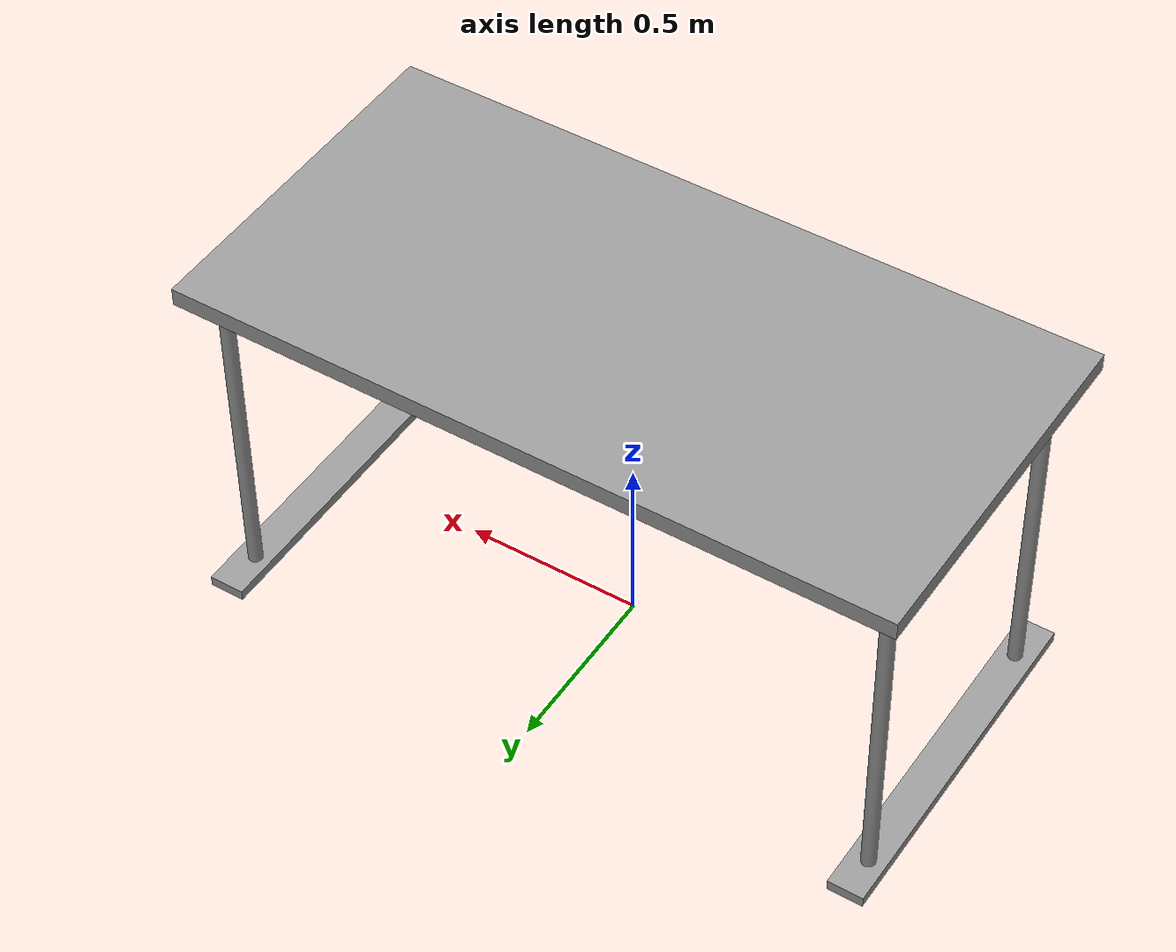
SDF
<?xml version='1.0'?>
<sdf version='1.7'>
  <model name='my_table'>
    <link name='link'>
      <inertial>
        <mass>1</mass>
        <inertia>
          <ixx>0.166667</ixx>
          <ixy>0</ixy>
          <ixz>0</ixz>
          <iyy>0.166667</iyy>
          <iyz>0</iyz>
          <izz>0.166667</izz>
        </inertia>
        <pose>0 0 0 0 -0 0</pose>
      </inertial>
      <self_collide>0</self_collide>
      <enable_wind>0</enable_wind>
      <kinematic>0</kinematic>
      <pose>0 0 0 0 -0 0</pose>
      <gravity>1</gravity>
      <visual name='visual'>
        <geometry>
          <box>
            <size>2 1 0.05</size>
          </box>
        </geometry>
        <material>
          <script>
            <name>Gazebo/Grey</name>
            <uri>file://media/materials/scripts/gazebo.material</uri>
          </script>
          <shader type='pixel'>
            <normal_map>__default__</normal_map>
          </shader>
          <ambient>0.8 0.8 0.8 1</ambient>
          <diffuse>0.65 0.65 0.65 1</diffuse>
          <specular>0.01 0.01 0.01 1</specular>
          <emissive>0.1 0.1 0.1 1</emissive>
        </material>
        <pose>0 0 1 0 -0 0</pose>
        <transparency>0</transparency>
        <cast_shadows>1</cast_shadows>
      </visual>
      <collision name='collision'>
        <laser_retro>0</laser_retro>
        <max_contacts>10</max_contacts>
        <pose>0 0 1 0 -0 0</pose>
        <geometry>
          <box>
            <size>2 1 0.05</size>
          </box>
        </geometry>
        <surface>
          <friction>
            <ode>
              <mu>1</mu>
              <mu2>1</mu2>
              <fdir1>0 0 0</fdir1>
              <slip1>0</slip1>
              <slip2>0</slip2>
            </ode>
            <torsional>
              <coefficient>1</coefficient>
              <patch_radius>0</patch_radius>
              <surface_radius>0</surface_radius>
              <use_patch_radius>1</use_patch_radius>
              <ode>
                <slip>0</slip>
              </ode>
            </torsional>
          </friction>
          <bounce>
            <restitution_coefficient>0</restitution_coefficient>
            <threshold>1e+06</threshold>
          </bounce>
          <contact>
            <collide_without_contact>0</collide_without_contact>
            <collide_without_contact_bitmask>1</collide_without_contact_bitmask>
            <collide_bitmask>1</collide_bitmask>
            <ode>
              <soft_cfm>0</soft_cfm>
              <soft_erp>0.2</soft_erp>
              <kp>1e+13</kp>
              <kd>1</kd>
              <max_vel>0.01</max_vel>
              <min_depth>0</min_depth>
            </ode>
            <bullet>
              <split_impulse>1</split_impulse>
              <split_impulse_penetration_threshold>-0.01</split_impulse_penetration_threshold>
              <soft_cfm>0</soft_cfm>
              <soft_erp>0.2</soft_erp>
              <kp>1e+13</kp>
              <kd>1</kd>
            </bullet>
          </contact>
        </surface>
      </collision>
    </link>
    <link name='link_1'>
      <inertial>
        <mass>1</mass>
        <inertia>
          <ixx>0.145833</ixx>
          <ixy>0</ixy>
          <ixz>0</ixz>
          <iyy>0.145833</iyy>
          <iyz>0</iyz>
          <izz>0.125</izz>
        </inertia>
        <pose>0 0 0 0 -0 0</pose>
      </inertial>
      <pose>0.928374 -0.393621 0.5 0 -0 0</pose>
      <gravity>1</gravity>
      <self_collide>0</self_collide>
      <kinematic>0</kinematic>
      <enable_wind>0</enable_wind>
      <visual name='visual'>
        <pose>0 0 0 0 -0 0</pose>
        <geometry>
          <cylinder>
            <radius>0.02</radius>
            <length>1</length>
          </cylinder>
        </geometry>
        <material>
          <lighting>1</lighting>
          <script>
            <uri>file://media/materials/scripts/gazebo.material</uri>
            <name>Gazebo/Grey</name>
          </script>
          <shader type='pixel'>
            <normal_map>__default__</normal_map>
          </shader>
          <ambient>0.5 0.5 0.5 1</ambient>
          <diffuse>0.8 0.8 0.8 1</diffuse>
          <specular>0.01 0.01 0.01 1</specular>
          <emissive>0 0 0 1</emissive>
        </material>
        <transparency>0</transparency>
        <cast_shadows>1</cast_shadows>
      </visual>
      <collision name='collision'>
        <laser_retro>0</laser_retro>
        <max_contacts>10</max_contacts>
        <pose>0 0 0 0 -0 0</pose>
        <geometry>
          <cylinder>
            <radius>0.02</radius>
            <length>0.75</length>
          </cylinder>
        </geometry>
        <surface>
          <friction>
            <ode>
              <mu>1</mu>
              <mu2>1</mu2>
              <fdir1>0 0 0</fdir1>
              <slip1>0</slip1>
              <slip2>0</slip2>
            </ode>
            <torsional>
              <coefficient>1</coefficient>
              <patch_radius>0</patch_radius>
              <surface_radius>0</surface_radius>
              <use_patch_radius>1</use_patch_radius>
              <ode>
                <slip>0</slip>
              </ode>
            </torsional>
          </friction>
          <bounce>
            <restitution_coefficient>0</restitution_coefficient>
            <threshold>1e+06</threshold>
          </bounce>
          <contact>
            <collide_without_contact>0</collide_without_contact>
            <collide_without_contact_bitmask>1</collide_without_contact_bitmask>
            <collide_bitmask>1</collide_bitmask>
            <ode>
              <soft_cfm>0</soft_cfm>
              <soft_erp>0.2</soft_erp>
              <kp>1e+13</kp>
              <kd>1</kd>
              <max_vel>0.01</max_vel>
              <min_depth>0</min_depth>
            </ode>
            <bullet>
              <split_impulse>1</split_impulse>
              <split_impulse_penetration_threshold>-0.01</split_impulse_penetration_threshold>
              <soft_cfm>0</soft_cfm>
              <soft_erp>0.2</soft_erp>
              <kp>1e+13</kp>
              <kd>1</kd>
            </bullet>
          </contact>
        </surface>
      </collision>
    </link>
    <link name='link_1_clone_1'>
      <inertial>
        <mass>1</mass>
        <inertia>
          <ixx>0.145833</ixx>
          <ixy>0</ixy>
          <ixz>0</ixz>
          <iyy>0.145833</iyy>
          <iyz>0</iyz>
          <izz>0.125</izz>
        </inertia>
        <pose>0 0 0 0 -0 0</pose>
      </inertial>
      <pose>-0.927679 -0.365385 0.5 0 -0 0</pose>
      <gravity>1</gravity>
      <self_collide>0</self_collide>
      <kinematic>0</kinematic>
      <enable_wind>0</enable_wind>
      <visual name='visual'>
        <pose>0 0 0 0 -0 0</pose>
        <geometry>
          <cylinder>
            <radius>0.02</radius>
            <length>1</length>
          </cylinder>
        </geometry>
        <material>
          <lighting>1</lighting>
          <script>
            <uri>file://media/materials/scripts/gazebo.material</uri>
            <name>Gazebo/Grey</name>
          </script>
          <shader type='pixel'>
            <normal_map>__default__</normal_map>
          </shader>
          <ambient>0.5 0.5 0.5 1</ambient>
          <diffuse>0.8 0.8 0.8 1</diffuse>
          <specular>0.01 0.01 0.01 1</specular>
          <emissive>0 0 0 1</emissive>
        </material>
        <transparency>0</transparency>
        <cast_shadows>1</cast_shadows>
      </visual>
      <collision name='collision'>
        <laser_retro>0</laser_retro>
        <max_contacts>10</max_contacts>
        <pose>0 0 0 0 -0 0</pose>
        <geometry>
          <cylinder>
            <radius>0.02</radius>
            <length>0.75</length>
          </cylinder>
        </geometry>
        <surface>
          <friction>
            <ode>
              <mu>1</mu>
              <mu2>1</mu2>
              <fdir1>0 0 0</fdir1>
              <slip1>0</slip1>
              <slip2>0</slip2>
            </ode>
            <torsional>
              <coefficient>1</coefficient>
              <patch_radius>0</patch_radius>
              <surface_radius>0</surface_radius>
              <use_patch_radius>1</use_patch_radius>
              <ode>
                <slip>0</slip>
              </ode>
            </torsional>
          </friction>
          <bounce>
            <restitution_coefficient>0</restitution_coefficient>
            <threshold>1e+06</threshold>
          </bounce>
          <contact>
            <collide_without_contact>0</collide_without_contact>
            <collide_without_contact_bitmask>1</collide_without_contact_bitmask>
            <collide_bitmask>1</collide_bitmask>
            <ode>
              <soft_cfm>0</soft_cfm>
              <soft_erp>0.2</soft_erp>
              <kp>1e+13</kp>
              <kd>1</kd>
              <max_vel>0.01</max_vel>
              <min_depth>0</min_depth>
            </ode>
            <bullet>
              <split_impulse>1</split_impulse>
              <split_impulse_penetration_threshold>-0.01</split_impulse_penetration_threshold>
              <soft_cfm>0</soft_cfm>
              <soft_erp>0.2</soft_erp>
              <kp>1e+13</kp>
              <kd>1</kd>
            </bullet>
          </contact>
        </surface>
      </collision>
    </link>
    <link name='link_1_clone_1_clone'>
      <inertial>
        <mass>1</mass>
        <inertia>
          <ixx>0.145833</ixx>
          <ixy>0</ixy>
          <ixz>0</ixz>
          <iyy>0.145833</iyy>
          <iyz>0</iyz>
          <izz>0.125</izz>
        </inertia>
        <pose>0 0 0 0 -0 0</pose>
      </inertial>
      <pose>-0.933002 0.405987 0.5 0 -0 0</pose>
      <gravity>1</gravity>
      <self_collide>0</self_collide>
      <kinematic>0</kinematic>
      <enable_wind>0</enable_wind>
      <visual name='visual'>
        <pose>0 0 0 0 -0 0</pose>
        <geometry>
          <cylinder>
            <radius>0.02</radius>
            <length>1</length>
          </cylinder>
        </geometry>
        <material>
          <lighting>1</lighting>
          <script>
            <uri>file://media/materials/scripts/gazebo.material</uri>
            <name>Gazebo/Grey</name>
          </script>
          <shader type='pixel'>
            <normal_map>__default__</normal_map>
          </shader>
          <ambient>0.5 0.5 0.5 1</ambient>
          <diffuse>0.8 0.8 0.8 1</diffuse>
          <specular>0.01 0.01 0.01 1</specular>
          <emissive>0 0 0 1</emissive>
        </material>
        <transparency>0</transparency>
        <cast_shadows>1</cast_shadows>
      </visual>
      <collision name='collision'>
        <laser_retro>0</laser_retro>
        <max_contacts>10</max_contacts>
        <pose>0 0 0 0 -0 0</pose>
        <geometry>
          <cylinder>
            <radius>0.02</radius>
            <length>0.75</length>
          </cylinder>
        </geometry>
        <surface>
          <friction>
            <ode>
              <mu>1</mu>
              <mu2>1</mu2>
              <fdir1>0 0 0</fdir1>
              <slip1>0</slip1>
              <slip2>0</slip2>
            </ode>
            <torsional>
              <coefficient>1</coefficient>
              <patch_radius>0</patch_radius>
              <surface_radius>0</surface_radius>
              <use_patch_radius>1</use_patch_radius>
              <ode>
                <slip>0</slip>
              </ode>
            </torsional>
          </friction>
          <bounce>
            <restitution_coefficient>0</restitution_coefficient>
            <threshold>1e+06</threshold>
          </bounce>
          <contact>
            <collide_without_contact>0</collide_without_contact>
            <collide_without_contact_bitmask>1</collide_without_contact_bitmask>
            <collide_bitmask>1</collide_bitmask>
            <ode>
              <soft_cfm>0</soft_cfm>
              <soft_erp>0.2</soft_erp>
              <kp>1e+13</kp>
              <kd>1</kd>
              <max_vel>0.01</max_vel>
              <min_depth>0</min_depth>
            </ode>
            <bullet>
              <split_impulse>1</split_impulse>
              <split_impulse_penetration_threshold>-0.01</split_impulse_penetration_threshold>
              <soft_cfm>0</soft_cfm>
              <soft_erp>0.2</soft_erp>
              <kp>1e+13</kp>
              <kd>1</kd>
            </bullet>
          </contact>
        </surface>
      </collision>
    </link>
    <link name='link_1_clone_1_clone_0'>
      <inertial>
        <mass>1</mass>
        <inertia>
          <ixx>0.145833</ixx>
          <ixy>0</ixy>
          <ixz>0</ixz>
          <iyy>0.145833</iyy>
          <iyz>0</iyz>
          <izz>0.125</izz>
        </inertia>
        <pose>0 0 0 0 -0 0</pose>
      </inertial>
      <pose>0.924345 0.40229 0.5 0 -0 0</pose>
      <gravity>1</gravity>
      <self_collide>0</self_collide>
      <kinematic>0</kinematic>
      <enable_wind>0</enable_wind>
      <visual name='visual'>
        <pose>0 0 0 0 -0 0</pose>
        <geometry>
          <cylinder>
            <radius>0.02</radius>
            <length>1</length>
          </cylinder>
        </geometry>
        <material>
          <lighting>1</lighting>
          <script>
            <uri>file://media/materials/scripts/gazebo.material</uri>
            <name>Gazebo/Grey</name>
          </script>
          <shader type='pixel'>
            <normal_map>__default__</normal_map>
          </shader>
          <ambient>0.5 0.5 0.5 1</ambient>
          <diffuse>0.8 0.8 0.8 1</diffuse>
          <specular>0.01 0.01 0.01 1</specular>
          <emissive>0 0 0 1</emissive>
        </material>
        <transparency>0</transparency>
        <cast_shadows>1</cast_shadows>
      </visual>
      <collision name='collision'>
        <laser_retro>0</laser_retro>
        <max_contacts>10</max_contacts>
        <pose>0 0 0 0 -0 0</pose>
        <geometry>
          <cylinder>
            <radius>0.02</radius>
            <length>0.75</length>
          </cylinder>
        </geometry>
        <surface>
          <friction>
            <ode>
              <mu>1</mu>
              <mu2>1</mu2>
              <fdir1>0 0 0</fdir1>
              <slip1>0</slip1>
              <slip2>0</slip2>
            </ode>
            <torsional>
              <coefficient>1</coefficient>
              <patch_radius>0</patch_radius>
              <surface_radius>0</surface_radius>
              <use_patch_radius>1</use_patch_radius>
              <ode>
                <slip>0</slip>
              </ode>
            </torsional>
          </friction>
          <bounce>
            <restitution_coefficient>0</restitution_coefficient>
            <threshold>1e+06</threshold>
          </bounce>
          <contact>
            <collide_without_contact>0</collide_without_contact>
            <collide_without_contact_bitmask>1</collide_without_contact_bitmask>
            <collide_bitmask>1</collide_bitmask>
            <ode>
              <soft_cfm>0</soft_cfm>
              <soft_erp>0.2</soft_erp>
              <kp>1e+13</kp>
              <kd>1</kd>
              <max_vel>0.01</max_vel>
              <min_depth>0</min_depth>
            </ode>
            <bullet>
              <split_impulse>1</split_impulse>
              <split_impulse_penetration_threshold>-0.01</split_impulse_penetration_threshold>
              <soft_cfm>0</soft_cfm>
              <soft_erp>0.2</soft_erp>
              <kp>1e+13</kp>
              <kd>1</kd>
            </bullet>
          </contact>
        </surface>
      </collision>
    </link>
    <link name='link_4'>
      <inertial>
        <mass>1</mass>
        <inertia>
          <ixx>0.166667</ixx>
          <ixy>0</ixy>
          <ixz>0</ixz>
          <iyy>0.166667</iyy>
          <iyz>0</iyz>
          <izz>0.166667</izz>
        </inertia>
        <pose>0 0 0 0 -0 0</pose>
      </inertial>
      <pose>-0.929144 0.01333 0.393797 0 -0 0</pose>
      <gravity>1</gravity>
      <self_collide>0</self_collide>
      <kinematic>0</kinematic>
      <enable_wind>0</enable_wind>
      <visual name='visual'>
        <pose>0 0 -0.385 0 -0 0</pose>
        <geometry>
          <box>
            <size>0.1 1 0.03</size>
          </box>
        </geometry>
        <material>
          <lighting>1</lighting>
          <script>
            <uri>file://media/materials/scripts/gazebo.material</uri>
            <name>Gazebo/Grey</name>
          </script>
          <shader type='pixel'>
            <normal_map>__default__</normal_map>
          </shader>
          <ambient>0.5 0.5 0.5 1</ambient>
          <diffuse>0.8 0.8 0.8 1</diffuse>
          <specular>0.01 0.01 0.01 1</specular>
          <emissive>0 0 0 1</emissive>
        </material>
        <transparency>0</transparency>
        <cast_shadows>1</cast_shadows>
      </visual>
      <collision name='collision'>
        <laser_retro>0</laser_retro>
        <max_contacts>10</max_contacts>
        <pose>0 0 -0.385 0 -0 0</pose>
        <geometry>
          <box>
            <size>0.1 1 0.03</size>
          </box>
        </geometry>
        <surface>
          <friction>
            <ode>
              <mu>1</mu>
              <mu2>1</mu2>
              <fdir1>0 0 0</fdir1>
              <slip1>0</slip1>
              <slip2>0</slip2>
            </ode>
            <torsional>
              <coefficient>1</coefficient>
              <patch_radius>0</patch_radius>
              <surface_radius>0</surface_radius>
              <use_patch_radius>1</use_patch_radius>
              <ode>
                <slip>0</slip>
              </ode>
            </torsional>
          </friction>
          <bounce>
            <restitution_coefficient>0</restitution_coefficient>
            <threshold>1e+06</threshold>
          </bounce>
          <contact>
            <collide_without_contact>0</collide_without_contact>
            <collide_without_contact_bitmask>1</collide_without_contact_bitmask>
            <collide_bitmask>1</collide_bitmask>
            <ode>
              <soft_cfm>0</soft_cfm>
              <soft_erp>0.2</soft_erp>
              <kp>1e+13</kp>
              <kd>1</kd>
              <max_vel>0.01</max_vel>
              <min_depth>0</min_depth>
            </ode>
            <bullet>
              <split_impulse>1</split_impulse>
              <split_impulse_penetration_threshold>-0.01</split_impulse_penetration_threshold>
              <soft_cfm>0</soft_cfm>
              <soft_erp>0.2</soft_erp>
              <kp>1e+13</kp>
              <kd>1</kd>
            </bullet>
          </contact>
        </surface>
      </collision>
    </link>
    <link name='link_4_clone'>
      <inertial>
        <mass>1</mass>
        <inertia>
          <ixx>0.166667</ixx>
          <ixy>0</ixy>
          <ixz>0</ixz>
          <iyy>0.166667</iyy>
          <iyz>0</iyz>
          <izz>0.166667</izz>
        </inertia>
        <pose>0 0 0 0 -0 0</pose>
      </inertial>
      <pose>0.929972 0.022547 0.39219 0 -0 0</pose>
      <gravity>1</gravity>
      <self_collide>0</self_collide>
      <kinematic>0</kinematic>
      <enable_wind>0</enable_wind>
      <visual name='visual'>
        <pose>0 0 -0.385 0 -0 0</pose>
        <geometry>
          <box>
            <size>0.1 1 0.03</size>
          </box>
        </geometry>
        <material>
          <lighting>1</lighting>
          <script>
            <uri>file://media/materials/scripts/gazebo.material</uri>
            <name>Gazebo/Grey</name>
          </script>
          <shader type='pixel'>
            <normal_map>__default__</normal_map>
          </shader>
          <ambient>0.5 0.5 0.5 1</ambient>
          <diffuse>0.8 0.8 0.8 1</diffuse>
          <specular>0.01 0.01 0.01 1</specular>
          <emissive>0 0 0 1</emissive>
        </material>
        <transparency>0</transparency>
        <cast_shadows>1</cast_shadows>
      </visual>
      <collision name='collision'>
        <laser_retro>0</laser_retro>
        <max_contacts>10</max_contacts>
        <pose>0 0 -0.385 0 -0 0</pose>
        <geometry>
          <box>
            <size>0.1 1 0.03</size>
          </box>
        </geometry>
        <surface>
          <friction>
            <ode>
              <mu>1</mu>
              <mu2>1</mu2>
              <fdir1>0 0 0</fdir1>
              <slip1>0</slip1>
              <slip2>0</slip2>
            </ode>
            <torsional>
              <coefficient>1</coefficient>
              <patch_radius>0</patch_radius>
              <surface_radius>0</surface_radius>
              <use_patch_radius>1</use_patch_radius>
              <ode>
                <slip>0</slip>
              </ode>
            </torsional>
          </friction>
          <bounce>
            <restitution_coefficient>0</restitution_coefficient>
            <threshold>1e+06</threshold>
          </bounce>
          <contact>
            <collide_without_contact>0</collide_without_contact>
            <collide_without_contact_bitmask>1</collide_without_contact_bitmask>
            <collide_bitmask>1</collide_bitmask>
            <ode>
              <soft_cfm>0</soft_cfm>
              <soft_erp>0.2</soft_erp>
              <kp>1e+13</kp>
              <kd>1</kd>
              <max_vel>0.01</max_vel>
              <min_depth>0</min_depth>
            </ode>
            <bullet>
              <split_impulse>1</split_impulse>
              <split_impulse_penetration_threshold>-0.01</split_impulse_penetration_threshold>
              <soft_cfm>0</soft_cfm>
              <soft_erp>0.2</soft_erp>
              <kp>1e+13</kp>
              <kd>1</kd>
            </bullet>
          </contact>
        </surface>
      </collision>
    </link>
    <static>1</static>
    <allow_auto_disable>1</allow_auto_disable>
  </model>
</sdf>
